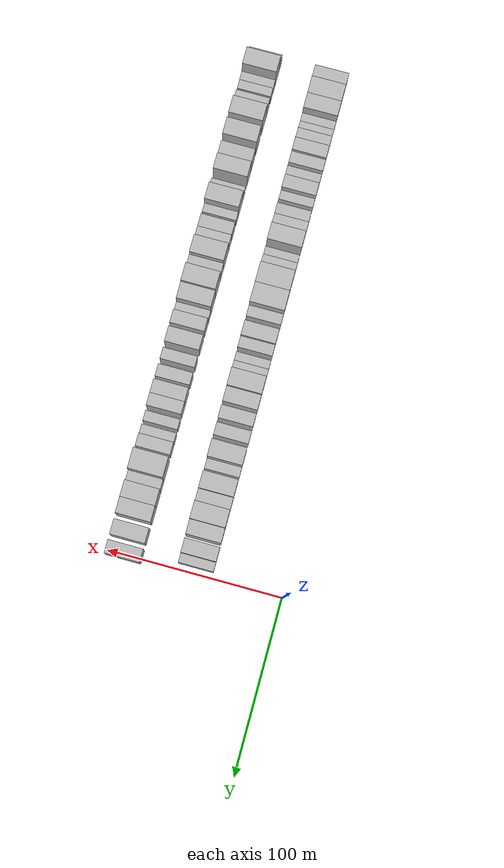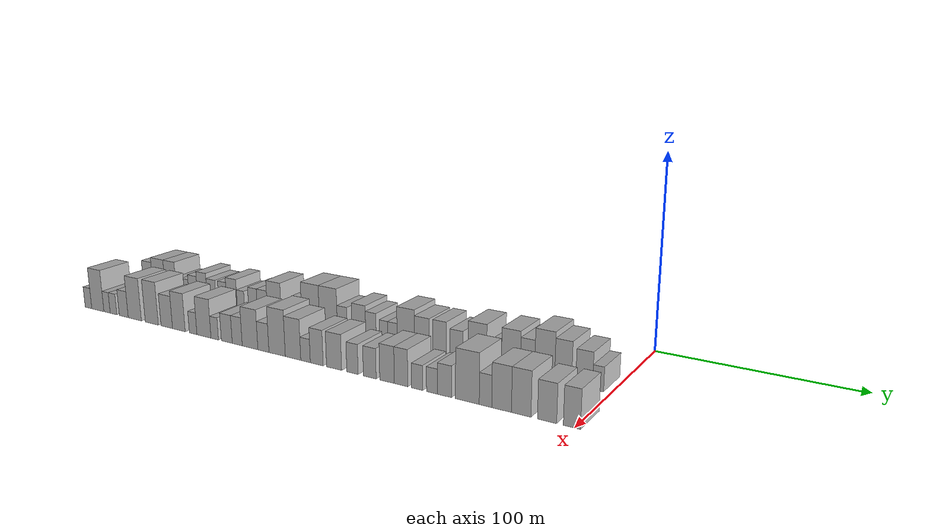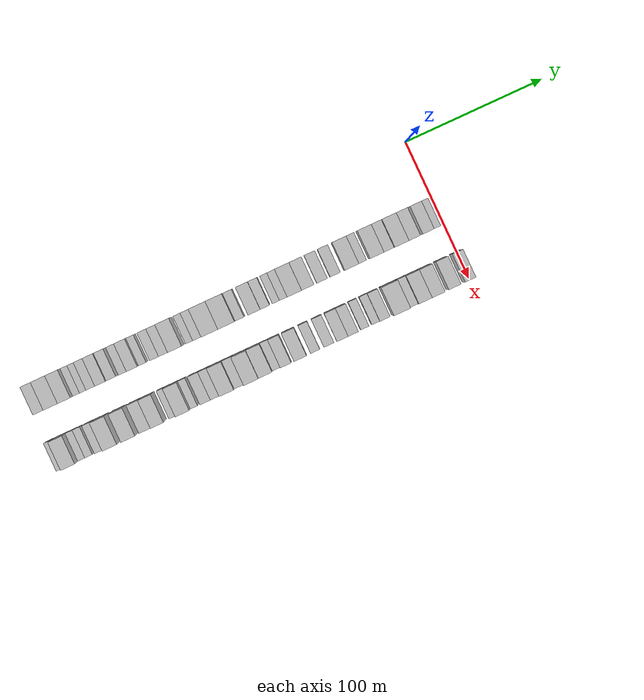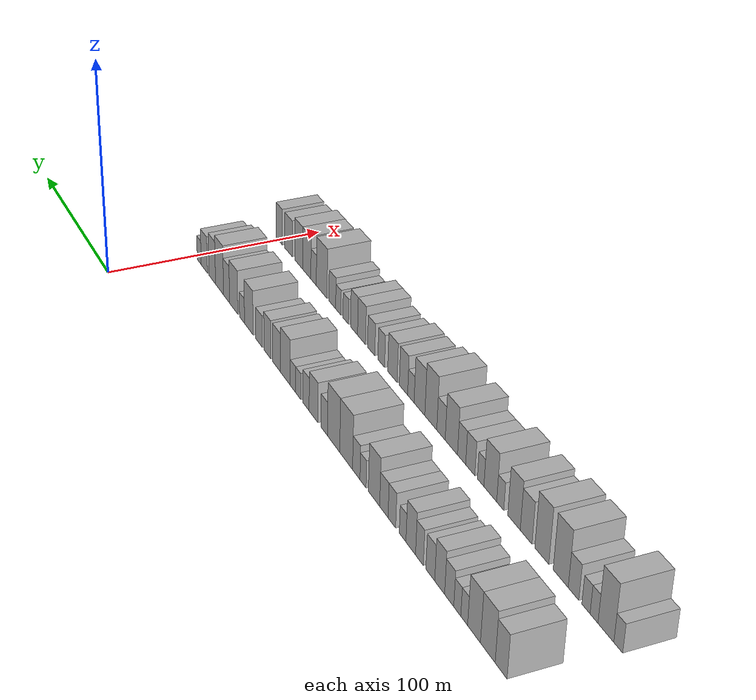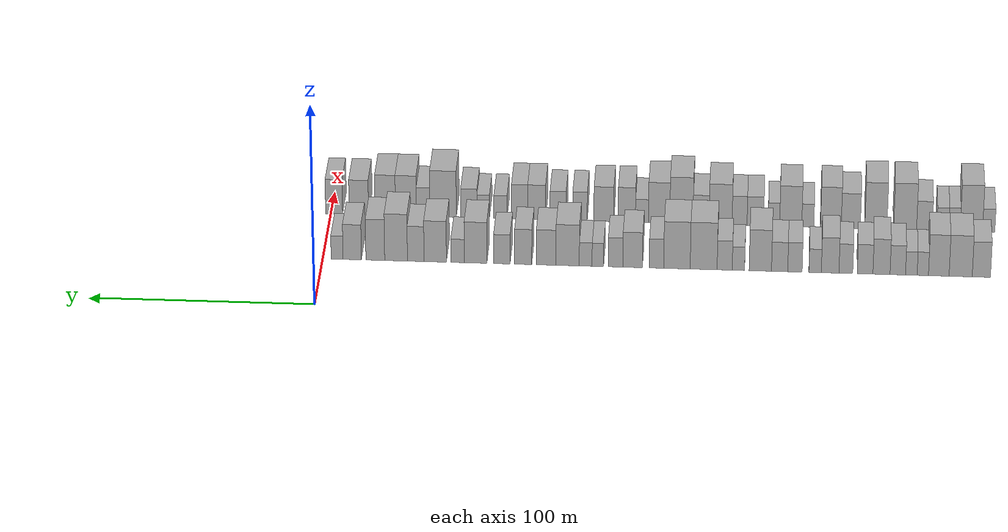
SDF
<sdf version="1.6">
 <world name="default">
  <model name="building_1">
   <static>1</static>
   <pose>50.0000 -292.9607 0 0.000000 0.000000 0.000000</pose>
   <link name="link">
    <pose>0 0 9.00 0 0 0</pose>
    <collision name="collision"><geometry><box><size>20.0000 8.0786 18.0000</size></box></geometry></collision>
    <visual name="visual">
     <cast_shadows>0</cast_shadows>
     <geometry><box><size>20.0000 8.0786 18.0000</size></box></geometry>
     <material>
      <script>
       <uri>model://HANNAS_wall/materials/scripts</uri>
       <uri>model://HANNAS_wall/materials/textures</uri>
       <name>vrc/HANNAS_wall</name>
      </script>
     </material>
    </visual>
   </link>
  </model>
  <model name="building_2">
   <static>1</static>
   <pose>50.0000 -283.7995 0 0.000000 0.000000 0.000000</pose>
   <link name="link">
    <pose>0 0 10.50 0 0 0</pose>
    <collision name="collision"><geometry><box><size>20.0000 10.2437 21.0000</size></box></geometry></collision>
    <visual name="visual">
     <cast_shadows>0</cast_shadows>
     <geometry><box><size>20.0000 10.2437 21.0000</size></box></geometry>
     <material>
      <script>
       <uri>model://HANNAS_wall/materials/scripts</uri>
       <uri>model://HANNAS_wall/materials/textures</uri>
       <name>vrc/HANNAS_wall</name>
      </script>
     </material>
    </visual>
   </link>
  </model>
  <model name="building_3">
   <static>1</static>
   <pose>50.0000 -274.1064 0 0.000000 0.000000 0.000000</pose>
   <link name="link">
    <pose>0 0 10.50 0 0 0</pose>
    <collision name="collision"><geometry><box><size>20.0000 9.1425 21.0000</size></box></geometry></collision>
    <visual name="visual">
     <cast_shadows>0</cast_shadows>
     <geometry><box><size>20.0000 9.1425 21.0000</size></box></geometry>
     <material>
      <script>
       <uri>model://HANNAS_wall/materials/scripts</uri>
       <uri>model://HANNAS_wall/materials/textures</uri>
       <name>vrc/HANNAS_wall</name>
      </script>
     </material>
    </visual>
   </link>
  </model>
  <model name="building_4">
   <static>1</static>
   <pose>50.0000 -267.0367 0 0.000000 0.000000 0.000000</pose>
   <link name="link">
    <pose>0 0 6.00 0 0 0</pose>
    <collision name="collision"><geometry><box><size>20.0000 4.9970 12.0000</size></box></geometry></collision>
    <visual name="visual">
     <cast_shadows>0</cast_shadows>
     <geometry><box><size>20.0000 4.9970 12.0000</size></box></geometry>
     <material>
      <script>
       <uri>model://HANNAS_wall/materials/scripts</uri>
       <uri>model://HANNAS_wall/materials/textures</uri>
       <name>vrc/HANNAS_wall</name>
      </script>
     </material>
    </visual>
   </link>
  </model>
  <model name="building_5">
   <static>1</static>
   <pose>50.0000 -261.9520 0 0.000000 0.000000 0.000000</pose>
   <link name="link">
    <pose>0 0 6.00 0 0 0</pose>
    <collision name="collision"><geometry><box><size>20.0000 5.1724 12.0000</size></box></geometry></collision>
    <visual name="visual">
     <cast_shadows>0</cast_shadows>
     <geometry><box><size>20.0000 5.1724 12.0000</size></box></geometry>
     <material>
      <script>
       <uri>model://HANNAS_wall/materials/scripts</uri>
       <uri>model://HANNAS_wall/materials/textures</uri>
       <name>vrc/HANNAS_wall</name>
      </script>
     </material>
    </visual>
   </link>
  </model>
  <model name="building_6">
   <static>1</static>
   <pose>50.0000 -255.9389 0 0.000000 0.000000 0.000000</pose>
   <link name="link">
    <pose>0 0 7.50 0 0 0</pose>
    <collision name="collision"><geometry><box><size>20.0000 6.8538 15.0000</size></box></geometry></collision>
    <visual name="visual">
     <cast_shadows>0</cast_shadows>
     <geometry><box><size>20.0000 6.8538 15.0000</size></box></geometry>
     <material>
      <script>
       <uri>model://HANNAS_wall/materials/scripts</uri>
       <uri>model://HANNAS_wall/materials/textures</uri>
       <name>vrc/HANNAS_wall</name>
      </script>
     </material>
    </visual>
   </link>
  </model>
  <model name="building_7">
   <static>1</static>
   <pose>50.0000 -248.7187 0 0.000000 0.000000 0.000000</pose>
   <link name="link">
    <pose>0 0 9.00 0 0 0</pose>
    <collision name="collision"><geometry><box><size>20.0000 7.5866 18.0000</size></box></geometry></collision>
    <visual name="visual">
     <cast_shadows>0</cast_shadows>
     <geometry><box><size>20.0000 7.5866 18.0000</size></box></geometry>
     <material>
      <script>
       <uri>model://HANNAS_wall/materials/scripts</uri>
       <uri>model://HANNAS_wall/materials/textures</uri>
       <name>vrc/HANNAS_wall</name>
      </script>
     </material>
    </visual>
   </link>
  </model>
  <model name="building_8">
   <static>1</static>
   <pose>50.0000 -241.4648 0 0.000000 0.000000 0.000000</pose>
   <link name="link">
    <pose>0 0 7.50 0 0 0</pose>
    <collision name="collision"><geometry><box><size>20.0000 6.9213 15.0000</size></box></geometry></collision>
    <visual name="visual">
     <cast_shadows>0</cast_shadows>
     <geometry><box><size>20.0000 6.9213 15.0000</size></box></geometry>
     <material>
      <script>
       <uri>model://HANNAS_wall/materials/scripts</uri>
       <uri>model://HANNAS_wall/materials/textures</uri>
       <name>vrc/HANNAS_wall</name>
      </script>
     </material>
    </visual>
   </link>
  </model>
  <model name="building_9">
   <static>1</static>
   <pose>50.0000 -232.9255 0 0.000000 0.000000 0.000000</pose>
   <link name="link">
    <pose>0 0 7.50 0 0 0</pose>
    <collision name="collision"><geometry><box><size>20.0000 6.1572 15.0000</size></box></geometry></collision>
    <visual name="visual">
     <cast_shadows>0</cast_shadows>
     <geometry><box><size>20.0000 6.1572 15.0000</size></box></geometry>
     <material>
      <script>
       <uri>model://HANNAS_wall/materials/scripts</uri>
       <uri>model://HANNAS_wall/materials/textures</uri>
       <name>vrc/HANNAS_wall</name>
      </script>
     </material>
    </visual>
   </link>
  </model>
  <model name="building_10">
   <static>1</static>
   <pose>50.0000 -225.9368 0 0.000000 0.000000 0.000000</pose>
   <link name="link">
    <pose>0 0 9.00 0 0 0</pose>
    <collision name="collision"><geometry><box><size>20.0000 7.8204 18.0000</size></box></geometry></collision>
    <visual name="visual">
     <cast_shadows>0</cast_shadows>
     <geometry><box><size>20.0000 7.8204 18.0000</size></box></geometry>
     <material>
      <script>
       <uri>model://HANNAS_wall/materials/scripts</uri>
       <uri>model://HANNAS_wall/materials/textures</uri>
       <name>vrc/HANNAS_wall</name>
      </script>
     </material>
    </visual>
   </link>
  </model>
  <model name="building_11">
   <static>1</static>
   <pose>50.0000 -219.2824 0 0.000000 0.000000 0.000000</pose>
   <link name="link">
    <pose>0 0 6.00 0 0 0</pose>
    <collision name="collision"><geometry><box><size>20.0000 5.4883 12.0000</size></box></geometry></collision>
    <visual name="visual">
     <cast_shadows>0</cast_shadows>
     <geometry><box><size>20.0000 5.4883 12.0000</size></box></geometry>
     <material>
      <script>
       <uri>model://HANNAS_wall/materials/scripts</uri>
       <uri>model://HANNAS_wall/materials/textures</uri>
       <name>vrc/HANNAS_wall</name>
      </script>
     </material>
    </visual>
   </link>
  </model>
  <model name="building_12">
   <static>1</static>
   <pose>50.0000 -210.3345 0 0.000000 0.000000 0.000000</pose>
   <link name="link">
    <pose>0 0 7.50 0 0 0</pose>
    <collision name="collision"><geometry><box><size>20.0000 6.4076 15.0000</size></box></geometry></collision>
    <visual name="visual">
     <cast_shadows>0</cast_shadows>
     <geometry><box><size>20.0000 6.4076 15.0000</size></box></geometry>
     <material>
      <script>
       <uri>model://HANNAS_wall/materials/scripts</uri>
       <uri>model://HANNAS_wall/materials/textures</uri>
       <name>vrc/HANNAS_wall</name>
      </script>
     </material>
    </visual>
   </link>
  </model>
  <model name="building_13">
   <static>1</static>
   <pose>50.0000 -203.5243 0 0.000000 0.000000 0.000000</pose>
   <link name="link">
    <pose>0 0 7.50 0 0 0</pose>
    <collision name="collision"><geometry><box><size>20.0000 7.2128 15.0000</size></box></geometry></collision>
    <visual name="visual">
     <cast_shadows>0</cast_shadows>
     <geometry><box><size>20.0000 7.2128 15.0000</size></box></geometry>
     <material>
      <script>
       <uri>model://HANNAS_wall/materials/scripts</uri>
       <uri>model://HANNAS_wall/materials/textures</uri>
       <name>vrc/HANNAS_wall</name>
      </script>
     </material>
    </visual>
   </link>
  </model>
  <model name="building_14">
   <static>1</static>
   <pose>50.0000 -194.9490 0 0.000000 0.000000 0.000000</pose>
   <link name="link">
    <pose>0 0 10.50 0 0 0</pose>
    <collision name="collision"><geometry><box><size>20.0000 9.9377 21.0000</size></box></geometry></collision>
    <visual name="visual">
     <cast_shadows>0</cast_shadows>
     <geometry><box><size>20.0000 9.9377 21.0000</size></box></geometry>
     <material>
      <script>
       <uri>model://HANNAS_wall/materials/scripts</uri>
       <uri>model://HANNAS_wall/materials/textures</uri>
       <name>vrc/HANNAS_wall</name>
      </script>
     </material>
    </visual>
   </link>
  </model>
  <model name="building_15">
   <static>1</static>
   <pose>50.0000 -185.2317 0 0.000000 0.000000 0.000000</pose>
   <link name="link">
    <pose>0 0 6.00 0 0 0</pose>
    <collision name="collision"><geometry><box><size>20.0000 5.4968 12.0000</size></box></geometry></collision>
    <visual name="visual">
     <cast_shadows>0</cast_shadows>
     <geometry><box><size>20.0000 5.4968 12.0000</size></box></geometry>
     <material>
      <script>
       <uri>model://HANNAS_wall/materials/scripts</uri>
       <uri>model://HANNAS_wall/materials/textures</uri>
       <name>vrc/HANNAS_wall</name>
      </script>
     </material>
    </visual>
   </link>
  </model>
  <model name="building_16">
   <static>1</static>
   <pose>50.0000 -179.1196 0 0.000000 0.000000 0.000000</pose>
   <link name="link">
    <pose>0 0 7.50 0 0 0</pose>
    <collision name="collision"><geometry><box><size>20.0000 6.7274 15.0000</size></box></geometry></collision>
    <visual name="visual">
     <cast_shadows>0</cast_shadows>
     <geometry><box><size>20.0000 6.7274 15.0000</size></box></geometry>
     <material>
      <script>
       <uri>model://HANNAS_wall/materials/scripts</uri>
       <uri>model://HANNAS_wall/materials/textures</uri>
       <name>vrc/HANNAS_wall</name>
      </script>
     </material>
    </visual>
   </link>
  </model>
  <model name="building_17">
   <static>1</static>
   <pose>50.0000 -169.7730 0 0.000000 0.000000 0.000000</pose>
   <link name="link">
    <pose>0 0 12.00 0 0 0</pose>
    <collision name="collision"><geometry><box><size>20.0000 11.9657 24.0000</size></box></geometry></collision>
    <visual name="visual">
     <cast_shadows>0</cast_shadows>
     <geometry><box><size>20.0000 11.9657 24.0000</size></box></geometry>
     <material>
      <script>
       <uri>model://HANNAS_wall/materials/scripts</uri>
       <uri>model://HANNAS_wall/materials/textures</uri>
       <name>vrc/HANNAS_wall</name>
      </script>
     </material>
    </visual>
   </link>
  </model>
  <model name="building_18">
   <static>1</static>
   <pose>50.0000 -157.8910 0 0.000000 0.000000 0.000000</pose>
   <link name="link">
    <pose>0 0 12.00 0 0 0</pose>
    <collision name="collision"><geometry><box><size>20.0000 11.7985 24.0000</size></box></geometry></collision>
    <visual name="visual">
     <cast_shadows>0</cast_shadows>
     <geometry><box><size>20.0000 11.7985 24.0000</size></box></geometry>
     <material>
      <script>
       <uri>model://HANNAS_wall/materials/scripts</uri>
       <uri>model://HANNAS_wall/materials/textures</uri>
       <name>vrc/HANNAS_wall</name>
      </script>
     </material>
    </visual>
   </link>
  </model>
  <model name="building_19">
   <static>1</static>
   <pose>50.0000 -148.7655 0 0.000000 0.000000 0.000000</pose>
   <link name="link">
    <pose>0 0 7.50 0 0 0</pose>
    <collision name="collision"><geometry><box><size>20.0000 6.4524 15.0000</size></box></geometry></collision>
    <visual name="visual">
     <cast_shadows>0</cast_shadows>
     <geometry><box><size>20.0000 6.4524 15.0000</size></box></geometry>
     <material>
      <script>
       <uri>model://HANNAS_wall/materials/scripts</uri>
       <uri>model://HANNAS_wall/materials/textures</uri>
       <name>vrc/HANNAS_wall</name>
      </script>
     </material>
    </visual>
   </link>
  </model>
  <model name="building_20">
   <static>1</static>
   <pose>50.0000 -138.1742 0 0.000000 0.000000 0.000000</pose>
   <link name="link">
    <pose>0 0 9.00 0 0 0</pose>
    <collision name="collision"><geometry><box><size>20.0000 8.7303 18.0000</size></box></geometry></collision>
    <visual name="visual">
     <cast_shadows>0</cast_shadows>
     <geometry><box><size>20.0000 8.7303 18.0000</size></box></geometry>
     <material>
      <script>
       <uri>model://HANNAS_wall/materials/scripts</uri>
       <uri>model://HANNAS_wall/materials/textures</uri>
       <name>vrc/HANNAS_wall</name>
      </script>
     </material>
    </visual>
   </link>
  </model>
  <model name="building_21">
   <static>1</static>
   <pose>50.0000 -130.5213 0 0.000000 0.000000 0.000000</pose>
   <link name="link">
    <pose>0 0 7.50 0 0 0</pose>
    <collision name="collision"><geometry><box><size>20.0000 6.5754 15.0000</size></box></geometry></collision>
    <visual name="visual">
     <cast_shadows>0</cast_shadows>
     <geometry><box><size>20.0000 6.5754 15.0000</size></box></geometry>
     <material>
      <script>
       <uri>model://HANNAS_wall/materials/scripts</uri>
       <uri>model://HANNAS_wall/materials/textures</uri>
       <name>vrc/HANNAS_wall</name>
      </script>
     </material>
    </visual>
   </link>
  </model>
  <model name="building_22">
   <static>1</static>
   <pose>50.0000 -122.6675 0 0.000000 0.000000 0.000000</pose>
   <link name="link">
    <pose>0 0 6.00 0 0 0</pose>
    <collision name="collision"><geometry><box><size>20.0000 5.1323 12.0000</size></box></geometry></collision>
    <visual name="visual">
     <cast_shadows>0</cast_shadows>
     <geometry><box><size>20.0000 5.1323 12.0000</size></box></geometry>
     <material>
      <script>
       <uri>model://HANNAS_wall/materials/scripts</uri>
       <uri>model://HANNAS_wall/materials/textures</uri>
       <name>vrc/HANNAS_wall</name>
      </script>
     </material>
    </visual>
   </link>
  </model>
  <model name="building_23">
   <static>1</static>
   <pose>50.0000 -117.2452 0 0.000000 0.000000 0.000000</pose>
   <link name="link">
    <pose>0 0 6.00 0 0 0</pose>
    <collision name="collision"><geometry><box><size>20.0000 5.7124 12.0000</size></box></geometry></collision>
    <visual name="visual">
     <cast_shadows>0</cast_shadows>
     <geometry><box><size>20.0000 5.7124 12.0000</size></box></geometry>
     <material>
      <script>
       <uri>model://HANNAS_wall/materials/scripts</uri>
       <uri>model://HANNAS_wall/materials/textures</uri>
       <name>vrc/HANNAS_wall</name>
      </script>
     </material>
    </visual>
   </link>
  </model>
  <model name="building_24">
   <static>1</static>
   <pose>50.0000 -109.2051 0 0.000000 0.000000 0.000000</pose>
   <link name="link">
    <pose>0 0 10.50 0 0 0</pose>
    <collision name="collision"><geometry><box><size>20.0000 10.3678 21.0000</size></box></geometry></collision>
    <visual name="visual">
     <cast_shadows>0</cast_shadows>
     <geometry><box><size>20.0000 10.3678 21.0000</size></box></geometry>
     <material>
      <script>
       <uri>model://HANNAS_wall/materials/scripts</uri>
       <uri>model://HANNAS_wall/materials/textures</uri>
       <name>vrc/HANNAS_wall</name>
      </script>
     </material>
    </visual>
   </link>
  </model>
  <model name="building_25">
   <static>1</static>
   <pose>50.0000 -99.6082 0 0.000000 0.000000 0.000000</pose>
   <link name="link">
    <pose>0 0 9.00 0 0 0</pose>
    <collision name="collision"><geometry><box><size>20.0000 8.8259 18.0000</size></box></geometry></collision>
    <visual name="visual">
     <cast_shadows>0</cast_shadows>
     <geometry><box><size>20.0000 8.8259 18.0000</size></box></geometry>
     <material>
      <script>
       <uri>model://HANNAS_wall/materials/scripts</uri>
       <uri>model://HANNAS_wall/materials/textures</uri>
       <name>vrc/HANNAS_wall</name>
      </script>
     </material>
    </visual>
   </link>
  </model>
  <model name="building_26">
   <static>1</static>
   <pose>50.0000 -89.3724 0 0.000000 0.000000 0.000000</pose>
   <link name="link">
    <pose>0 0 9.00 0 0 0</pose>
    <collision name="collision"><geometry><box><size>20.0000 7.6458 18.0000</size></box></geometry></collision>
    <visual name="visual">
     <cast_shadows>0</cast_shadows>
     <geometry><box><size>20.0000 7.6458 18.0000</size></box></geometry>
     <material>
      <script>
       <uri>model://HANNAS_wall/materials/scripts</uri>
       <uri>model://HANNAS_wall/materials/textures</uri>
       <name>vrc/HANNAS_wall</name>
      </script>
     </material>
    </visual>
   </link>
  </model>
  <model name="building_27">
   <static>1</static>
   <pose>50.0000 -79.8591 0 0.000000 0.000000 0.000000</pose>
   <link name="link">
    <pose>0 0 7.50 0 0 0</pose>
    <collision name="collision"><geometry><box><size>20.0000 7.3808 15.0000</size></box></geometry></collision>
    <visual name="visual">
     <cast_shadows>0</cast_shadows>
     <geometry><box><size>20.0000 7.3808 15.0000</size></box></geometry>
     <material>
      <script>
       <uri>model://HANNAS_wall/materials/scripts</uri>
       <uri>model://HANNAS_wall/materials/textures</uri>
       <name>vrc/HANNAS_wall</name>
      </script>
     </material>
    </visual>
   </link>
  </model>
  <model name="building_28">
   <static>1</static>
   <pose>50.0000 -68.1175 0 0.000000 0.000000 0.000000</pose>
   <link name="link">
    <pose>0 0 10.50 0 0 0</pose>
    <collision name="collision"><geometry><box><size>20.0000 10.1024 21.0000</size></box></geometry></collision>
    <visual name="visual">
     <cast_shadows>0</cast_shadows>
     <geometry><box><size>20.0000 10.1024 21.0000</size></box></geometry>
     <material>
      <script>
       <uri>model://HANNAS_wall/materials/scripts</uri>
       <uri>model://HANNAS_wall/materials/textures</uri>
       <name>vrc/HANNAS_wall</name>
      </script>
     </material>
    </visual>
   </link>
  </model>
  <model name="building_29">
   <static>1</static>
   <pose>50.0000 -60.0794 0 0.000000 0.000000 0.000000</pose>
   <link name="link">
    <pose>0 0 6.00 0 0 0</pose>
    <collision name="collision"><geometry><box><size>20.0000 5.9738 12.0000</size></box></geometry></collision>
    <visual name="visual">
     <cast_shadows>0</cast_shadows>
     <geometry><box><size>20.0000 5.9738 12.0000</size></box></geometry>
     <material>
      <script>
       <uri>model://HANNAS_wall/materials/scripts</uri>
       <uri>model://HANNAS_wall/materials/textures</uri>
       <name>vrc/HANNAS_wall</name>
      </script>
     </material>
    </visual>
   </link>
  </model>
  <model name="building_30">
   <static>1</static>
   <pose>50.0000 -50.0860 0 0.000000 0.000000 0.000000</pose>
   <link name="link">
    <pose>0 0 10.50 0 0 0</pose>
    <collision name="collision"><geometry><box><size>20.0000 10.0130 21.0000</size></box></geometry></collision>
    <visual name="visual">
     <cast_shadows>0</cast_shadows>
     <geometry><box><size>20.0000 10.0130 21.0000</size></box></geometry>
     <material>
      <script>
       <uri>model://HANNAS_wall/materials/scripts</uri>
       <uri>model://HANNAS_wall/materials/textures</uri>
       <name>vrc/HANNAS_wall</name>
      </script>
     </material>
    </visual>
   </link>
  </model>
  <model name="building_31">
   <static>1</static>
   <pose>50.0000 -41.3721 0 0.000000 0.000000 0.000000</pose>
   <link name="link">
    <pose>0 0 9.00 0 0 0</pose>
    <collision name="collision"><geometry><box><size>20.0000 7.4148 18.0000</size></box></geometry></collision>
    <visual name="visual">
     <cast_shadows>0</cast_shadows>
     <geometry><box><size>20.0000 7.4148 18.0000</size></box></geometry>
     <material>
      <script>
       <uri>model://HANNAS_wall/materials/scripts</uri>
       <uri>model://HANNAS_wall/materials/textures</uri>
       <name>vrc/HANNAS_wall</name>
      </script>
     </material>
    </visual>
   </link>
  </model>
  <model name="building_32">
   <static>1</static>
   <pose>50.0000 -32.5783 0 0.000000 0.000000 0.000000</pose>
   <link name="link">
    <pose>0 0 12.00 0 0 0</pose>
    <collision name="collision"><geometry><box><size>20.0000 10.1729 24.0000</size></box></geometry></collision>
    <visual name="visual">
     <cast_shadows>0</cast_shadows>
     <geometry><box><size>20.0000 10.1729 24.0000</size></box></geometry>
     <material>
      <script>
       <uri>model://HANNAS_wall/materials/scripts</uri>
       <uri>model://HANNAS_wall/materials/textures</uri>
       <name>vrc/HANNAS_wall</name>
      </script>
     </material>
    </visual>
   </link>
  </model>
  <model name="building_33">
   <static>1</static>
   <pose>50.0000 -23.2700 0 0.000000 0.000000 0.000000</pose>
   <link name="link">
    <pose>0 0 10.50 0 0 0</pose>
    <collision name="collision"><geometry><box><size>20.0000 8.4438 21.0000</size></box></geometry></collision>
    <visual name="visual">
     <cast_shadows>0</cast_shadows>
     <geometry><box><size>20.0000 8.4438 21.0000</size></box></geometry>
     <material>
      <script>
       <uri>model://HANNAS_wall/materials/scripts</uri>
       <uri>model://HANNAS_wall/materials/textures</uri>
       <name>vrc/HANNAS_wall</name>
      </script>
     </material>
    </visual>
   </link>
  </model>
  <model name="building_34">
   <static>1</static>
   <pose>50.0000 -12.9507 0 0.000000 0.000000 0.000000</pose>
   <link name="link">
    <pose>0 0 9.00 0 0 0</pose>
    <collision name="collision"><geometry><box><size>20.0000 8.1948 18.0000</size></box></geometry></collision>
    <visual name="visual">
     <cast_shadows>0</cast_shadows>
     <geometry><box><size>20.0000 8.1948 18.0000</size></box></geometry>
     <material>
      <script>
       <uri>model://HANNAS_wall/materials/scripts</uri>
       <uri>model://HANNAS_wall/materials/textures</uri>
       <name>vrc/HANNAS_wall</name>
      </script>
     </material>
    </visual>
   </link>
  </model>
  <model name="building_35">
   <static>1</static>
   <pose>50.0000 -6.1831 0 0.000000 0.000000 0.000000</pose>
   <link name="link">
    <pose>0 0 6.00 0 0 0</pose>
    <collision name="collision"><geometry><box><size>20.0000 5.3404 12.0000</size></box></geometry></collision>
    <visual name="visual">
     <cast_shadows>0</cast_shadows>
     <geometry><box><size>20.0000 5.3404 12.0000</size></box></geometry>
     <material>
      <script>
       <uri>model://HANNAS_wall/materials/scripts</uri>
       <uri>model://HANNAS_wall/materials/textures</uri>
       <name>vrc/HANNAS_wall</name>
      </script>
     </material>
    </visual>
   </link>
  </model>
  <model name="building_71">
   <static>1</static>
   <pose>90.0000 -297.2342 0 0.000000 0.000000 0.000000</pose>
   <link name="link">
    <pose>0 0 6.00 0 0 0</pose>
    <collision name="collision"><geometry><box><size>20.0000 5.5316 12.0000</size></box></geometry></collision>
    <visual name="visual">
     <cast_shadows>0</cast_shadows>
     <geometry><box><size>20.0000 5.5316 12.0000</size></box></geometry>
     <material>
      <script>
       <uri>model://HANNAS_wall/materials/scripts</uri>
       <uri>model://HANNAS_wall/materials/textures</uri>
       <name>vrc/HANNAS_wall</name>
      </script>
     </material>
    </visual>
   </link>
  </model>
  <model name="building_72">
   <static>1</static>
   <pose>90.0000 -289.4360 0 0.000000 0.000000 0.000000</pose>
   <link name="link">
    <pose>0 0 12.00 0 0 0</pose>
    <collision name="collision"><geometry><box><size>20.0000 10.0647 24.0000</size></box></geometry></collision>
    <visual name="visual">
     <cast_shadows>0</cast_shadows>
     <geometry><box><size>20.0000 10.0647 24.0000</size></box></geometry>
     <material>
      <script>
       <uri>model://HANNAS_wall/materials/scripts</uri>
       <uri>model://HANNAS_wall/materials/textures</uri>
       <name>vrc/HANNAS_wall</name>
      </script>
     </material>
    </visual>
   </link>
  </model>
  <model name="building_73">
   <static>1</static>
   <pose>90.0000 -281.8545 0 0.000000 0.000000 0.000000</pose>
   <link name="link">
    <pose>0 0 6.00 0 0 0</pose>
    <collision name="collision"><geometry><box><size>20.0000 5.0982 12.0000</size></box></geometry></collision>
    <visual name="visual">
     <cast_shadows>0</cast_shadows>
     <geometry><box><size>20.0000 5.0982 12.0000</size></box></geometry>
     <material>
      <script>
       <uri>model://HANNAS_wall/materials/scripts</uri>
       <uri>model://HANNAS_wall/materials/textures</uri>
       <name>vrc/HANNAS_wall</name>
      </script>
     </material>
    </visual>
   </link>
  </model>
  <model name="building_74">
   <static>1</static>
   <pose>90.0000 -276.6023 0 0.000000 0.000000 0.000000</pose>
   <link name="link">
    <pose>0 0 6.00 0 0 0</pose>
    <collision name="collision"><geometry><box><size>20.0000 5.4062 12.0000</size></box></geometry></collision>
    <visual name="visual">
     <cast_shadows>0</cast_shadows>
     <geometry><box><size>20.0000 5.4062 12.0000</size></box></geometry>
     <material>
      <script>
       <uri>model://HANNAS_wall/materials/scripts</uri>
       <uri>model://HANNAS_wall/materials/textures</uri>
       <name>vrc/HANNAS_wall</name>
      </script>
     </material>
    </visual>
   </link>
  </model>
  <model name="building_75">
   <static>1</static>
   <pose>90.0000 -268.3498 0 0.000000 0.000000 0.000000</pose>
   <link name="link">
    <pose>0 0 7.50 0 0 0</pose>
    <collision name="collision"><geometry><box><size>20.0000 7.0988 15.0000</size></box></geometry></collision>
    <visual name="visual">
     <cast_shadows>0</cast_shadows>
     <geometry><box><size>20.0000 7.0988 15.0000</size></box></geometry>
     <material>
      <script>
       <uri>model://HANNAS_wall/materials/scripts</uri>
       <uri>model://HANNAS_wall/materials/textures</uri>
       <name>vrc/HANNAS_wall</name>
      </script>
     </material>
    </visual>
   </link>
  </model>
  <model name="building_76">
   <static>1</static>
   <pose>90.0000 -259.6288 0 0.000000 0.000000 0.000000</pose>
   <link name="link">
    <pose>0 0 12.00 0 0 0</pose>
    <collision name="collision"><geometry><box><size>20.0000 10.3433 24.0000</size></box></geometry></collision>
    <visual name="visual">
     <cast_shadows>0</cast_shadows>
     <geometry><box><size>20.0000 10.3433 24.0000</size></box></geometry>
     <material>
      <script>
       <uri>model://HANNAS_wall/materials/scripts</uri>
       <uri>model://HANNAS_wall/materials/textures</uri>
       <name>vrc/HANNAS_wall</name>
      </script>
     </material>
    </visual>
   </link>
  </model>
  <model name="building_77">
   <static>1</static>
   <pose>90.0000 -246.4644 0 0.000000 0.000000 0.000000</pose>
   <link name="link">
    <pose>0 0 12.00 0 0 0</pose>
    <collision name="collision"><geometry><box><size>20.0000 9.9855 24.0000</size></box></geometry></collision>
    <visual name="visual">
     <cast_shadows>0</cast_shadows>
     <geometry><box><size>20.0000 9.9855 24.0000</size></box></geometry>
     <material>
      <script>
       <uri>model://HANNAS_wall/materials/scripts</uri>
       <uri>model://HANNAS_wall/materials/textures</uri>
       <name>vrc/HANNAS_wall</name>
      </script>
     </material>
    </visual>
   </link>
  </model>
  <model name="building_78">
   <static>1</static>
   <pose>90.0000 -235.1674 0 0.000000 0.000000 0.000000</pose>
   <link name="link">
    <pose>0 0 9.00 0 0 0</pose>
    <collision name="collision"><geometry><box><size>20.0000 8.6084 18.0000</size></box></geometry></collision>
    <visual name="visual">
     <cast_shadows>0</cast_shadows>
     <geometry><box><size>20.0000 8.6084 18.0000</size></box></geometry>
     <material>
      <script>
       <uri>model://HANNAS_wall/materials/scripts</uri>
       <uri>model://HANNAS_wall/materials/textures</uri>
       <name>vrc/HANNAS_wall</name>
      </script>
     </material>
    </visual>
   </link>
  </model>
  <model name="building_79">
   <static>1</static>
   <pose>90.0000 -226.1966 0 0.000000 0.000000 0.000000</pose>
   <link name="link">
    <pose>0 0 10.50 0 0 0</pose>
    <collision name="collision"><geometry><box><size>20.0000 9.3332 21.0000</size></box></geometry></collision>
    <visual name="visual">
     <cast_shadows>0</cast_shadows>
     <geometry><box><size>20.0000 9.3332 21.0000</size></box></geometry>
     <material>
      <script>
       <uri>model://HANNAS_wall/materials/scripts</uri>
       <uri>model://HANNAS_wall/materials/textures</uri>
       <name>vrc/HANNAS_wall</name>
      </script>
     </material>
    </visual>
   </link>
  </model>
  <model name="building_80">
   <static>1</static>
   <pose>90.0000 -215.8054 0 0.000000 0.000000 0.000000</pose>
   <link name="link">
    <pose>0 0 6.00 0 0 0</pose>
    <collision name="collision"><geometry><box><size>20.0000 5.4493 12.0000</size></box></geometry></collision>
    <visual name="visual">
     <cast_shadows>0</cast_shadows>
     <geometry><box><size>20.0000 5.4493 12.0000</size></box></geometry>
     <material>
      <script>
       <uri>model://HANNAS_wall/materials/scripts</uri>
       <uri>model://HANNAS_wall/materials/textures</uri>
       <name>vrc/HANNAS_wall</name>
      </script>
     </material>
    </visual>
   </link>
  </model>
  <model name="building_81">
   <static>1</static>
   <pose>90.0000 -208.0930 0 0.000000 0.000000 0.000000</pose>
   <link name="link">
    <pose>0 0 10.50 0 0 0</pose>
    <collision name="collision"><geometry><box><size>20.0000 9.9755 21.0000</size></box></geometry></collision>
    <visual name="visual">
     <cast_shadows>0</cast_shadows>
     <geometry><box><size>20.0000 9.9755 21.0000</size></box></geometry>
     <material>
      <script>
       <uri>model://HANNAS_wall/materials/scripts</uri>
       <uri>model://HANNAS_wall/materials/textures</uri>
       <name>vrc/HANNAS_wall</name>
      </script>
     </material>
    </visual>
   </link>
  </model>
  <model name="building_82">
   <static>1</static>
   <pose>90.0000 -200.4946 0 0.000000 0.000000 0.000000</pose>
   <link name="link">
    <pose>0 0 6.00 0 0 0</pose>
    <collision name="collision"><geometry><box><size>20.0000 5.2213 12.0000</size></box></geometry></collision>
    <visual name="visual">
     <cast_shadows>0</cast_shadows>
     <geometry><box><size>20.0000 5.2213 12.0000</size></box></geometry>
     <material>
      <script>
       <uri>model://HANNAS_wall/materials/scripts</uri>
       <uri>model://HANNAS_wall/materials/textures</uri>
       <name>vrc/HANNAS_wall</name>
      </script>
     </material>
    </visual>
   </link>
  </model>
  <model name="building_83">
   <static>1</static>
   <pose>90.0000 -192.1438 0 0.000000 0.000000 0.000000</pose>
   <link name="link">
    <pose>0 0 7.50 0 0 0</pose>
    <collision name="collision"><geometry><box><size>20.0000 7.4802 15.0000</size></box></geometry></collision>
    <visual name="visual">
     <cast_shadows>0</cast_shadows>
     <geometry><box><size>20.0000 7.4802 15.0000</size></box></geometry>
     <material>
      <script>
       <uri>model://HANNAS_wall/materials/scripts</uri>
       <uri>model://HANNAS_wall/materials/textures</uri>
       <name>vrc/HANNAS_wall</name>
      </script>
     </material>
    </visual>
   </link>
  </model>
  <model name="building_84">
   <static>1</static>
   <pose>90.0000 -185.0323 0 0.000000 0.000000 0.000000</pose>
   <link name="link">
    <pose>0 0 7.50 0 0 0</pose>
    <collision name="collision"><geometry><box><size>20.0000 6.7427 15.0000</size></box></geometry></collision>
    <visual name="visual">
     <cast_shadows>0</cast_shadows>
     <geometry><box><size>20.0000 6.7427 15.0000</size></box></geometry>
     <material>
      <script>
       <uri>model://HANNAS_wall/materials/scripts</uri>
       <uri>model://HANNAS_wall/materials/textures</uri>
       <name>vrc/HANNAS_wall</name>
      </script>
     </material>
    </visual>
   </link>
  </model>
  <model name="building_85">
   <static>1</static>
   <pose>90.0000 -176.4579 0 0.000000 0.000000 0.000000</pose>
   <link name="link">
    <pose>0 0 10.50 0 0 0</pose>
    <collision name="collision"><geometry><box><size>20.0000 10.4061 21.0000</size></box></geometry></collision>
    <visual name="visual">
     <cast_shadows>0</cast_shadows>
     <geometry><box><size>20.0000 10.4061 21.0000</size></box></geometry>
     <material>
      <script>
       <uri>model://HANNAS_wall/materials/scripts</uri>
       <uri>model://HANNAS_wall/materials/textures</uri>
       <name>vrc/HANNAS_wall</name>
      </script>
     </material>
    </visual>
   </link>
  </model>
  <model name="building_86">
   <static>1</static>
   <pose>90.0000 -167.6391 0 0.000000 0.000000 0.000000</pose>
   <link name="link">
    <pose>0 0 7.50 0 0 0</pose>
    <collision name="collision"><geometry><box><size>20.0000 7.2314 15.0000</size></box></geometry></collision>
    <visual name="visual">
     <cast_shadows>0</cast_shadows>
     <geometry><box><size>20.0000 7.2314 15.0000</size></box></geometry>
     <material>
      <script>
       <uri>model://HANNAS_wall/materials/scripts</uri>
       <uri>model://HANNAS_wall/materials/textures</uri>
       <name>vrc/HANNAS_wall</name>
      </script>
     </material>
    </visual>
   </link>
  </model>
  <model name="building_87">
   <static>1</static>
   <pose>90.0000 -158.7784 0 0.000000 0.000000 0.000000</pose>
   <link name="link">
    <pose>0 0 12.00 0 0 0</pose>
    <collision name="collision"><geometry><box><size>20.0000 10.4900 24.0000</size></box></geometry></collision>
    <visual name="visual">
     <cast_shadows>0</cast_shadows>
     <geometry><box><size>20.0000 10.4900 24.0000</size></box></geometry>
     <material>
      <script>
       <uri>model://HANNAS_wall/materials/scripts</uri>
       <uri>model://HANNAS_wall/materials/textures</uri>
       <name>vrc/HANNAS_wall</name>
      </script>
     </material>
    </visual>
   </link>
  </model>
  <model name="building_88">
   <static>1</static>
   <pose>90.0000 -148.6922 0 0.000000 0.000000 0.000000</pose>
   <link name="link">
    <pose>0 0 10.50 0 0 0</pose>
    <collision name="collision"><geometry><box><size>20.0000 9.6823 21.0000</size></box></geometry></collision>
    <visual name="visual">
     <cast_shadows>0</cast_shadows>
     <geometry><box><size>20.0000 9.6823 21.0000</size></box></geometry>
     <material>
      <script>
       <uri>model://HANNAS_wall/materials/scripts</uri>
       <uri>model://HANNAS_wall/materials/textures</uri>
       <name>vrc/HANNAS_wall</name>
      </script>
     </material>
    </visual>
   </link>
  </model>
  <model name="building_89">
   <static>1</static>
   <pose>90.0000 -140.9075 0 0.000000 0.000000 0.000000</pose>
   <link name="link">
    <pose>0 0 6.00 0 0 0</pose>
    <collision name="collision"><geometry><box><size>20.0000 5.8870 12.0000</size></box></geometry></collision>
    <visual name="visual">
     <cast_shadows>0</cast_shadows>
     <geometry><box><size>20.0000 5.8870 12.0000</size></box></geometry>
     <material>
      <script>
       <uri>model://HANNAS_wall/materials/scripts</uri>
       <uri>model://HANNAS_wall/materials/textures</uri>
       <name>vrc/HANNAS_wall</name>
      </script>
     </material>
    </visual>
   </link>
  </model>
  <model name="building_90">
   <static>1</static>
   <pose>90.0000 -134.0504 0 0.000000 0.000000 0.000000</pose>
   <link name="link">
    <pose>0 0 9.00 0 0 0</pose>
    <collision name="collision"><geometry><box><size>20.0000 7.8273 18.0000</size></box></geometry></collision>
    <visual name="visual">
     <cast_shadows>0</cast_shadows>
     <geometry><box><size>20.0000 7.8273 18.0000</size></box></geometry>
     <material>
      <script>
       <uri>model://HANNAS_wall/materials/scripts</uri>
       <uri>model://HANNAS_wall/materials/textures</uri>
       <name>vrc/HANNAS_wall</name>
      </script>
     </material>
    </visual>
   </link>
  </model>
  <model name="building_91">
   <static>1</static>
   <pose>90.0000 -123.6484 0 0.000000 0.000000 0.000000</pose>
   <link name="link">
    <pose>0 0 9.00 0 0 0</pose>
    <collision name="collision"><geometry><box><size>20.0000 8.9767 18.0000</size></box></geometry></collision>
    <visual name="visual">
     <cast_shadows>0</cast_shadows>
     <geometry><box><size>20.0000 8.9767 18.0000</size></box></geometry>
     <material>
      <script>
       <uri>model://HANNAS_wall/materials/scripts</uri>
       <uri>model://HANNAS_wall/materials/textures</uri>
       <name>vrc/HANNAS_wall</name>
      </script>
     </material>
    </visual>
   </link>
  </model>
  <model name="building_92">
   <static>1</static>
   <pose>90.0000 -112.8656 0 0.000000 0.000000 0.000000</pose>
   <link name="link">
    <pose>0 0 7.50 0 0 0</pose>
    <collision name="collision"><geometry><box><size>20.0000 6.5889 15.0000</size></box></geometry></collision>
    <visual name="visual">
     <cast_shadows>0</cast_shadows>
     <geometry><box><size>20.0000 6.5889 15.0000</size></box></geometry>
     <material>
      <script>
       <uri>model://HANNAS_wall/materials/scripts</uri>
       <uri>model://HANNAS_wall/materials/textures</uri>
       <name>vrc/HANNAS_wall</name>
      </script>
     </material>
    </visual>
   </link>
  </model>
  <model name="building_93">
   <static>1</static>
   <pose>90.0000 -102.9337 0 0.000000 0.000000 0.000000</pose>
   <link name="link">
    <pose>0 0 7.50 0 0 0</pose>
    <collision name="collision"><geometry><box><size>20.0000 7.2750 15.0000</size></box></geometry></collision>
    <visual name="visual">
     <cast_shadows>0</cast_shadows>
     <geometry><box><size>20.0000 7.2750 15.0000</size></box></geometry>
     <material>
      <script>
       <uri>model://HANNAS_wall/materials/scripts</uri>
       <uri>model://HANNAS_wall/materials/textures</uri>
       <name>vrc/HANNAS_wall</name>
      </script>
     </material>
    </visual>
   </link>
  </model>
  <model name="building_94">
   <static>1</static>
   <pose>90.0000 -93.2474 0 0.000000 0.000000 0.000000</pose>
   <link name="link">
    <pose>0 0 9.00 0 0 0</pose>
    <collision name="collision"><geometry><box><size>20.0000 8.0976 18.0000</size></box></geometry></collision>
    <visual name="visual">
     <cast_shadows>0</cast_shadows>
     <geometry><box><size>20.0000 8.0976 18.0000</size></box></geometry>
     <material>
      <script>
       <uri>model://HANNAS_wall/materials/scripts</uri>
       <uri>model://HANNAS_wall/materials/textures</uri>
       <name>vrc/HANNAS_wall</name>
      </script>
     </material>
    </visual>
   </link>
  </model>
  <model name="building_95">
   <static>1</static>
   <pose>90.0000 -85.5245 0 0.000000 0.000000 0.000000</pose>
   <link name="link">
    <pose>0 0 9.00 0 0 0</pose>
    <collision name="collision"><geometry><box><size>20.0000 7.3481 18.0000</size></box></geometry></collision>
    <visual name="visual">
     <cast_shadows>0</cast_shadows>
     <geometry><box><size>20.0000 7.3481 18.0000</size></box></geometry>
     <material>
      <script>
       <uri>model://HANNAS_wall/materials/scripts</uri>
       <uri>model://HANNAS_wall/materials/textures</uri>
       <name>vrc/HANNAS_wall</name>
      </script>
     </material>
    </visual>
   </link>
  </model>
  <model name="building_96">
   <static>1</static>
   <pose>90.0000 -76.8568 0 0.000000 0.000000 0.000000</pose>
   <link name="link">
    <pose>0 0 6.00 0 0 0</pose>
    <collision name="collision"><geometry><box><size>20.0000 5.9874 12.0000</size></box></geometry></collision>
    <visual name="visual">
     <cast_shadows>0</cast_shadows>
     <geometry><box><size>20.0000 5.9874 12.0000</size></box></geometry>
     <material>
      <script>
       <uri>model://HANNAS_wall/materials/scripts</uri>
       <uri>model://HANNAS_wall/materials/textures</uri>
       <name>vrc/HANNAS_wall</name>
      </script>
     </material>
    </visual>
   </link>
  </model>
  <model name="building_97">
   <static>1</static>
   <pose>90.0000 -69.0323 0 0.000000 0.000000 0.000000</pose>
   <link name="link">
    <pose>0 0 6.00 0 0 0</pose>
    <collision name="collision"><geometry><box><size>20.0000 5.6616 12.0000</size></box></geometry></collision>
    <visual name="visual">
     <cast_shadows>0</cast_shadows>
     <geometry><box><size>20.0000 5.6616 12.0000</size></box></geometry>
     <material>
      <script>
       <uri>model://HANNAS_wall/materials/scripts</uri>
       <uri>model://HANNAS_wall/materials/textures</uri>
       <name>vrc/HANNAS_wall</name>
      </script>
     </material>
    </visual>
   </link>
  </model>
  <model name="building_98">
   <static>1</static>
   <pose>90.0000 -62.5134 0 0.000000 0.000000 0.000000</pose>
   <link name="link">
    <pose>0 0 7.50 0 0 0</pose>
    <collision name="collision"><geometry><box><size>20.0000 7.3760 15.0000</size></box></geometry></collision>
    <visual name="visual">
     <cast_shadows>0</cast_shadows>
     <geometry><box><size>20.0000 7.3760 15.0000</size></box></geometry>
     <material>
      <script>
       <uri>model://HANNAS_wall/materials/scripts</uri>
       <uri>model://HANNAS_wall/materials/textures</uri>
       <name>vrc/HANNAS_wall</name>
      </script>
     </material>
    </visual>
   </link>
  </model>
  <model name="building_99">
   <static>1</static>
   <pose>90.0000 -50.8547 0 0.000000 0.000000 0.000000</pose>
   <link name="link">
    <pose>0 0 12.00 0 0 0</pose>
    <collision name="collision"><geometry><box><size>20.0000 11.9414 24.0000</size></box></geometry></collision>
    <visual name="visual">
     <cast_shadows>0</cast_shadows>
     <geometry><box><size>20.0000 11.9414 24.0000</size></box></geometry>
     <material>
      <script>
       <uri>model://HANNAS_wall/materials/scripts</uri>
       <uri>model://HANNAS_wall/materials/textures</uri>
       <name>vrc/HANNAS_wall</name>
      </script>
     </material>
    </visual>
   </link>
  </model>
  <model name="building_100">
   <static>1</static>
   <pose>90.0000 -41.8014 0 0.000000 0.000000 0.000000</pose>
   <link name="link">
    <pose>0 0 7.50 0 0 0</pose>
    <collision name="collision"><geometry><box><size>20.0000 6.1652 15.0000</size></box></geometry></collision>
    <visual name="visual">
     <cast_shadows>0</cast_shadows>
     <geometry><box><size>20.0000 6.1652 15.0000</size></box></geometry>
     <material>
      <script>
       <uri>model://HANNAS_wall/materials/scripts</uri>
       <uri>model://HANNAS_wall/materials/textures</uri>
       <name>vrc/HANNAS_wall</name>
      </script>
     </material>
    </visual>
   </link>
  </model>
  <model name="building_101">
   <static>1</static>
   <pose>90.0000 -33.9580 0 0.000000 0.000000 0.000000</pose>
   <link name="link">
    <pose>0 0 10.50 0 0 0</pose>
    <collision name="collision"><geometry><box><size>20.0000 9.5215 21.0000</size></box></geometry></collision>
    <visual name="visual">
     <cast_shadows>0</cast_shadows>
     <geometry><box><size>20.0000 9.5215 21.0000</size></box></geometry>
     <material>
      <script>
       <uri>model://HANNAS_wall/materials/scripts</uri>
       <uri>model://HANNAS_wall/materials/textures</uri>
       <name>vrc/HANNAS_wall</name>
      </script>
     </material>
    </visual>
   </link>
  </model>
  <model name="building_102">
   <static>1</static>
   <pose>90.0000 -24.5790 0 0.000000 0.000000 0.000000</pose>
   <link name="link">
    <pose>0 0 10.50 0 0 0</pose>
    <collision name="collision"><geometry><box><size>20.0000 9.2365 21.0000</size></box></geometry></collision>
    <visual name="visual">
     <cast_shadows>0</cast_shadows>
     <geometry><box><size>20.0000 9.2365 21.0000</size></box></geometry>
     <material>
      <script>
       <uri>model://HANNAS_wall/materials/scripts</uri>
       <uri>model://HANNAS_wall/materials/textures</uri>
       <name>vrc/HANNAS_wall</name>
      </script>
     </material>
    </visual>
   </link>
  </model>
  <model name="building_103">
   <static>1</static>
   <pose>90.0000 -12.5604 0 0.000000 0.000000 0.000000</pose>
   <link name="link">
    <pose>0 0 9.00 0 0 0</pose>
    <collision name="collision"><geometry><box><size>20.0000 8.8008 18.0000</size></box></geometry></collision>
    <visual name="visual">
     <cast_shadows>0</cast_shadows>
     <geometry><box><size>20.0000 8.8008 18.0000</size></box></geometry>
     <material>
      <script>
       <uri>model://HANNAS_wall/materials/scripts</uri>
       <uri>model://HANNAS_wall/materials/textures</uri>
       <name>vrc/HANNAS_wall</name>
      </script>
     </material>
    </visual>
   </link>
  </model>
  <model name="building_104">
   <static>1</static>
   <pose>90.0000 -1.3233 0 0.000000 0.000000 0.000000</pose>
   <link name="link">
    <pose>0 0 9.00 0 0 0</pose>
    <collision name="collision"><geometry><box><size>20.0000 7.6734 18.0000</size></box></geometry></collision>
    <visual name="visual">
     <cast_shadows>0</cast_shadows>
     <geometry><box><size>20.0000 7.6734 18.0000</size></box></geometry>
     <material>
      <script>
       <uri>model://HANNAS_wall/materials/scripts</uri>
       <uri>model://HANNAS_wall/materials/textures</uri>
       <name>vrc/HANNAS_wall</name>
      </script>
     </material>
    </visual>
   </link>
  </model>
 </world>
</sdf>
